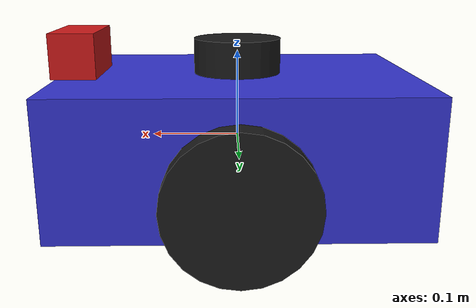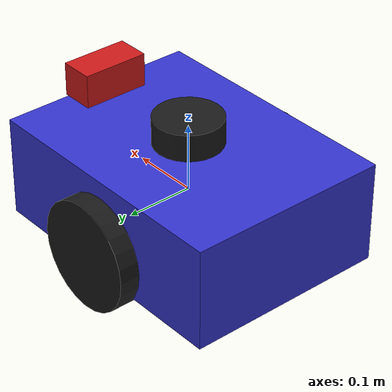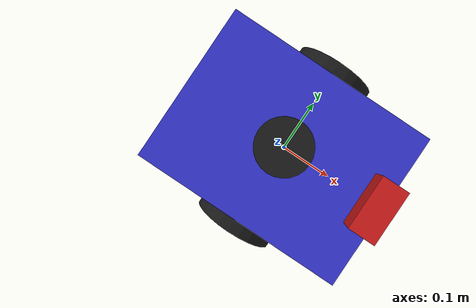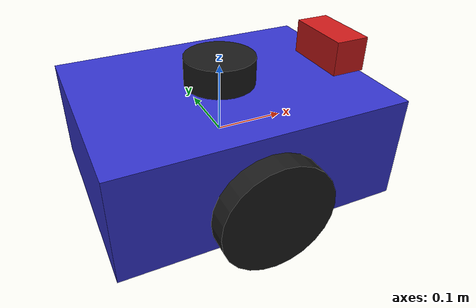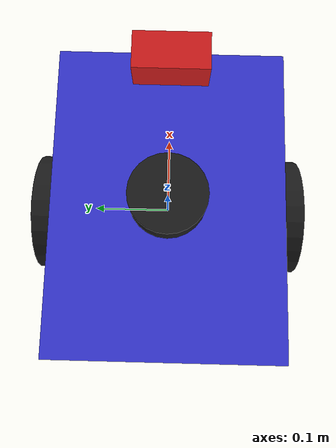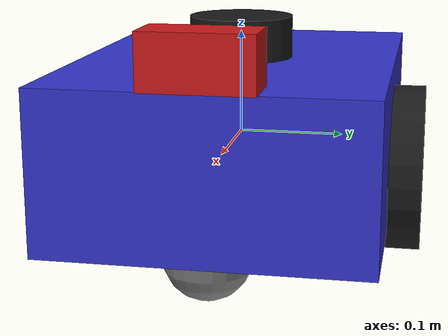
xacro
<?xml version="1.0"?>
<robot name="ethical_robot" xmlns:xacro="http://www.ros.org/wiki/xacro">

  <!-- Robot dimensions -->
  <xacro:property name="base_width" value="0.3"/>
  <xacro:property name="base_length" value="0.4"/>
  <xacro:property name="base_height" value="0.15"/>
  <xacro:property name="wheel_radius" value="0.08"/>
  <xacro:property name="wheel_width" value="0.04"/>
  <xacro:property name="wheel_separation" value="0.32"/>
  <xacro:property name="wheel_offset_x" value="0.0"/>
  <xacro:property name="wheel_offset_z" value="-0.03"/>
  <xacro:property name="caster_radius" value="0.04"/>

  <!-- Inertial macro -->
  <xacro:macro name="box_inertia" params="m w h d">
    <inertial>
      <mass value="${m}"/>
      <inertia ixx="${m*(h*h+d*d)/12}" ixy="0.0" ixz="0.0"
               iyy="${m*(w*w+d*d)/12}" iyz="0.0"
               izz="${m*(w*w+h*h)/12}"/>
    </inertial>
  </xacro:macro>

  <xacro:macro name="cylinder_inertia" params="m r h">
    <inertial>
      <mass value="${m}"/>
      <inertia ixx="${m*(3*r*r+h*h)/12}" ixy="0.0" ixz="0.0"
               iyy="${m*(3*r*r+h*h)/12}" iyz="0.0"
               izz="${m*r*r/2}"/>
    </inertial>
  </xacro:macro>

  <!-- Base link -->
  <link name="base_link">
    <visual>
      <geometry>
        <box size="${base_length} ${base_width} ${base_height}"/>
      </geometry>
      <material name="blue">
        <color rgba="0.2 0.2 0.8 1.0"/>
      </material>
    </visual>
    <collision>
      <geometry>
        <box size="${base_length} ${base_width} ${base_height}"/>
      </geometry>
    </collision>
    <xacro:box_inertia m="5.0" w="${base_width}" h="${base_height}" d="${base_length}"/>
  </link>

  <!-- Right wheel -->
  <link name="right_wheel_link">
    <visual>
      <geometry>
        <cylinder radius="${wheel_radius}" length="${wheel_width}"/>
      </geometry>
      <material name="black">
        <color rgba="0.1 0.1 0.1 1.0"/>
      </material>
      <origin xyz="0 0 0" rpy="${pi/2} 0 0"/>
    </visual>
    <collision>
      <geometry>
        <cylinder radius="${wheel_radius}" length="${wheel_width}"/>
      </geometry>
      <origin xyz="0 0 0" rpy="${pi/2} 0 0"/>
    </collision>
    <xacro:cylinder_inertia m="1.0" r="${wheel_radius}" h="${wheel_width}"/>
  </link>

  <joint name="right_wheel_joint" type="continuous">
    <parent link="base_link"/>
    <child link="right_wheel_link"/>
    <origin xyz="${wheel_offset_x} ${-wheel_separation/2} ${wheel_offset_z}" rpy="0 0 0"/>
    <axis xyz="0 1 0"/>
    <dynamics damping="0.1" friction="0.1"/>
  </joint>

  <!-- Left wheel -->
  <link name="left_wheel_link">
    <visual>
      <geometry>
        <cylinder radius="${wheel_radius}" length="${wheel_width}"/>
      </geometry>
      <material name="black">
        <color rgba="0.1 0.1 0.1 1.0"/>
      </material>
      <origin xyz="0 0 0" rpy="${pi/2} 0 0"/>
    </visual>
    <collision>
      <geometry>
        <cylinder radius="${wheel_radius}" length="${wheel_width}"/>
      </geometry>
      <origin xyz="0 0 0" rpy="${pi/2} 0 0"/>
    </collision>
    <xacro:cylinder_inertia m="1.0" r="${wheel_radius}" h="${wheel_width}"/>
  </link>

  <joint name="left_wheel_joint" type="continuous">
    <parent link="base_link"/>
    <child link="left_wheel_link"/>
    <origin xyz="${wheel_offset_x} ${wheel_separation/2} ${wheel_offset_z}" rpy="0 0 0"/>
    <axis xyz="0 1 0"/>
    <dynamics damping="0.1" friction="0.1"/>
  </joint>

  <!-- Caster wheel -->
  <link name="caster_link">
    <visual>
      <geometry>
        <sphere radius="${caster_radius}"/>
      </geometry>
      <material name="grey">
        <color rgba="0.5 0.5 0.5 1.0"/>
      </material>
    </visual>
    <collision>
      <geometry>
        <sphere radius="${caster_radius}"/>
      </geometry>
    </collision>
    <xacro:cylinder_inertia m="0.5" r="${caster_radius}" h="${caster_radius*2}"/>
  </link>

  <joint name="caster_joint" type="fixed">
    <parent link="base_link"/>
    <child link="caster_link"/>
    <origin xyz="${base_length/2 - caster_radius} 0 ${-base_height/2}"/>
  </joint>

  <!-- Lidar sensor -->
  <link name="lidar_link">
    <visual>
      <geometry>
        <cylinder radius="0.05" length="0.04"/>
      </geometry>
      <material name="black">
        <color rgba="0.1 0.1 0.1 1.0"/>
      </material>
    </visual>
    <collision>
      <geometry>
        <cylinder radius="0.05" length="0.04"/>
      </geometry>
    </collision>
    <xacro:cylinder_inertia m="0.1" r="0.05" h="0.04"/>
  </link>

  <joint name="lidar_joint" type="fixed">
    <parent link="base_link"/>
    <child link="lidar_link"/>
    <origin xyz="0 0 ${base_height/2 + 0.02}" rpy="0 0 0"/>
  </joint>

  <!-- Camera -->
  <link name="camera_link">
    <visual>
      <geometry>
        <box size="0.05 0.1 0.05"/>
      </geometry>
      <material name="red">
        <color rgba="0.8 0.1 0.1 1.0"/>
      </material>
    </visual>
    <collision>
      <geometry>
        <box size="0.05 0.1 0.05"/>
      </geometry>
    </collision>
    <xacro:box_inertia m="0.1" w="0.1" h="0.05" d="0.05"/>
  </link>

  <joint name="camera_joint" type="fixed">
    <parent link="base_link"/>
    <child link="camera_link"/>
    <origin xyz="${base_length/2 - 0.02} 0 ${base_height/2 + 0.025}" rpy="0 0 0"/>
  </joint>

  <!-- Gazebo plugins -->
  <gazebo>
    <plugin name="differential_drive_controller" filename="libgazebo_ros_diff_drive.so">
      <update_rate>50</update_rate>
      <left_joint>left_wheel_joint</left_joint>
      <right_joint>right_wheel_joint</right_joint>
      <wheel_separation>${wheel_separation}</wheel_separation>
      <wheel_diameter>${wheel_radius * 2}</wheel_diameter>
      <max_wheel_acceleration>1.0</max_wheel_acceleration>
      <max_wheel_torque>20.0</max_wheel_torque>
      <publish_odom>true</publish_odom>
      <publish_odom_tf>true</publish_odom_tf>
      <publish_wheel_tf>true</publish_wheel_tf>
      <odometry_frame>odom</odometry_frame>
      <robot_base_frame>base_link</robot_base_frame>
    </plugin>
  </gazebo>

  <gazebo reference="lidar_link">
    <sensor type="ray" name="lidar_sensor">
      <pose>0 0 0 0 0 0</pose>
      <visualize>true</visualize>
      <update_rate>10</update_rate>
      <ray>
        <scan>
          <horizontal>
            <samples>360</samples>
            <resolution>1</resolution>
            <min_angle>-3.14159</min_angle>
            <max_angle>3.14159</max_angle>
          </horizontal>
        </scan>
        <range>
          <min>0.1</min>
          <max>10.0</max>
          <resolution>0.01</resolution>
        </range>
        <noise>
          <type>gaussian</type>
          <mean>0.0</mean>
          <stddev>0.01</stddev>
        </noise>
      </ray>
      <plugin name="gazebo_ros_lidar_controller" filename="libgazebo_ros_ray_sensor.so">
        <ros>
          <namespace>/</namespace>
          <remapping>~/out:=scan</remapping>
        </ros>
        <output_type>sensor_msgs/LaserScan</output_type>
        <frame_name>lidar_link</frame_name>
      </plugin>
    </sensor>
  </gazebo>

  <gazebo reference="camera_link">
    <sensor type="camera" name="camera_sensor">
      <update_rate>30.0</update_rate>
      <camera name="camera">
        <horizontal_fov>1.3962634</horizontal_fov>
        <image>
          <width>640</width>
          <height>480</height>
          <format>R8G8B8</format>
        </image>
        <clip>
          <near>0.02</near>
          <far>300</far>
        </clip>
        <noise>
          <type>gaussian</type>
          <mean>0.0</mean>
          <stddev>0.007</stddev>
        </noise>
      </camera>
      <plugin name="camera_controller" filename="libgazebo_ros_camera.so">
        <alwaysOn>true</alwaysOn>
        <updateRate>0.0</updateRate>
        <cameraName>camera</cameraName>
        <imageTopicName>image_raw</imageTopicName>
        <cameraInfoTopicName>camera_info</cameraInfoTopicName>
        <frameName>camera_link</frameName>
        <hackBaseline>0.07</hackBaseline>
        <distortionK1>0.0</distortionK1>
        <distortionK2>0.0</distortionK2>
        <distortionK3>0.0</distortionK3>
        <distortionT1>0.0</distortionT1>
        <distortionT2>0.0</distortionT2>
      </plugin>
    </sensor>
  </gazebo>

  <!-- Add colors to the robot -->
  <gazebo reference="base_link">
    <material>Gazebo/Blue</material>
  </gazebo>

  <gazebo reference="left_wheel_link">
    <material>Gazebo/Black</material>
  </gazebo>

  <gazebo reference="right_wheel_link">
    <material>Gazebo/Black</material>
  </gazebo>

  <gazebo reference="caster_link">
    <material>Gazebo/Grey</material>
    <mu1>0.1</mu1>
    <mu2>0.1</mu2>
  </gazebo>

</robot>
